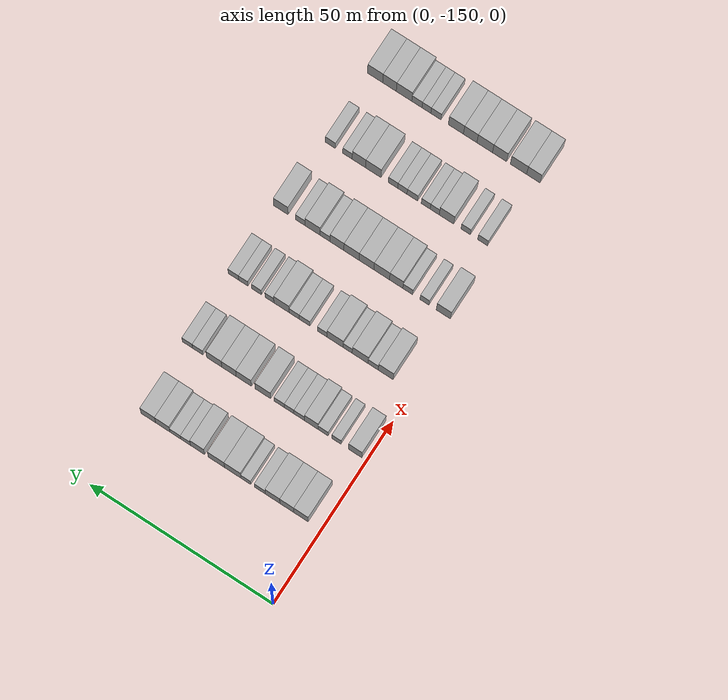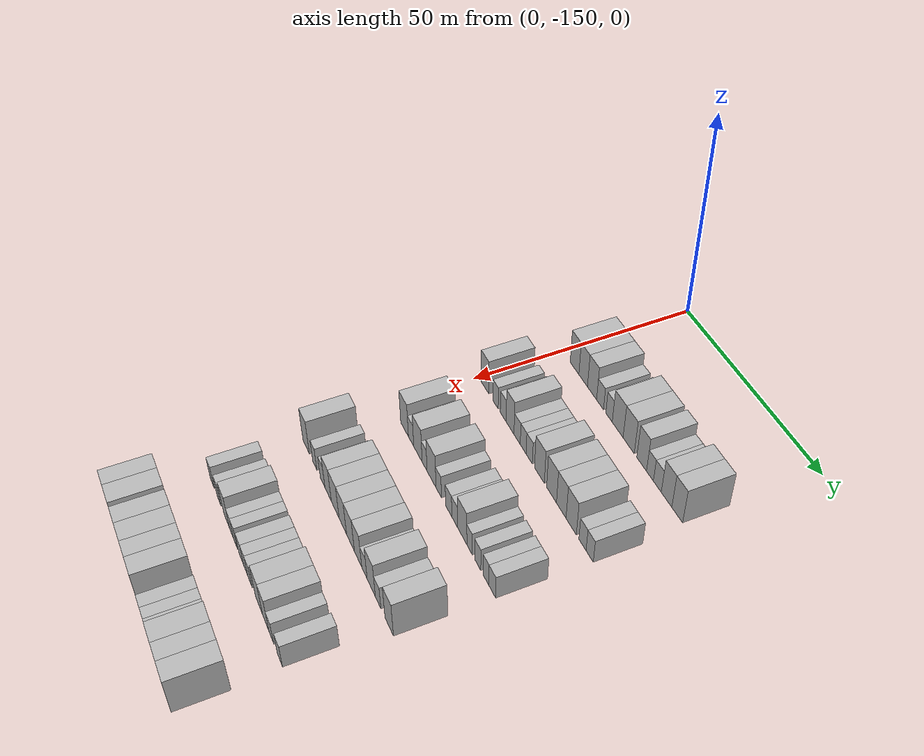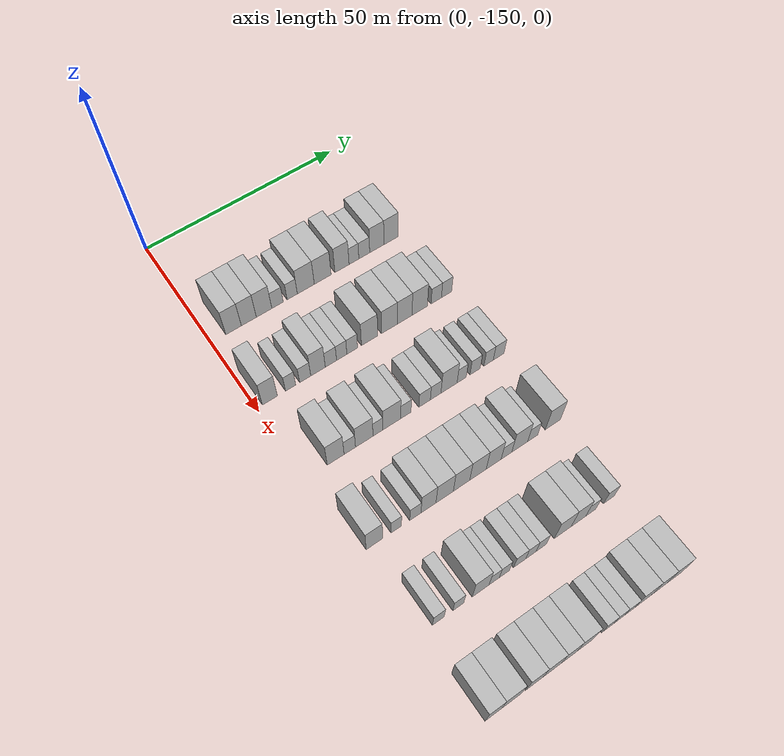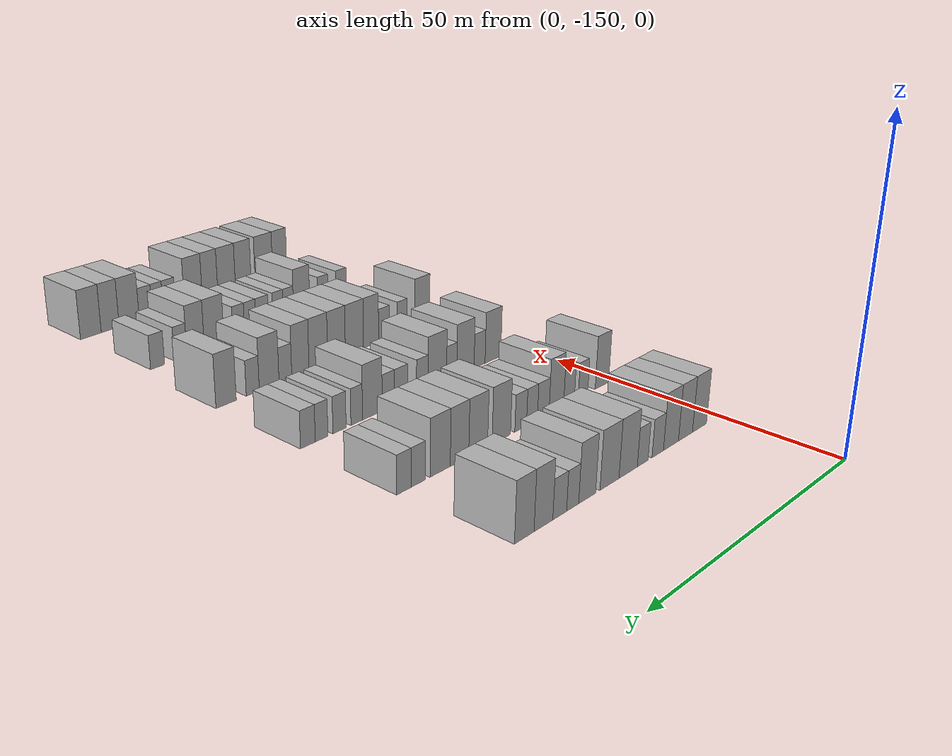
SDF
<sdf version="1.6">
 <world name="default">
  <model name="building_56">
   <static>1</static>
   <pose>25.0000 -144.4338 0 0.000000 0.000000 0.000000</pose>
   <link name="link">
    <pose>0 0 4.50 0 0 0</pose>
    <collision name="collision"><geometry><box><size>10.0000 3.9071 9.0000</size></box></geometry></collision>
    <visual name="visual">
     <cast_shadows>0</cast_shadows>
     <geometry><box><size>10.0000 3.9071 9.0000</size></box></geometry>
     <material>
      <script>
       <uri>model://HANNAS_wall/materials/scripts</uri>
       <uri>model://HANNAS_wall/materials/textures</uri>
       <name>vrc/HANNAS_wall</name>
      </script>
     </material>
    </visual>
   </link>
  </model>
  <model name="building_57">
   <static>1</static>
   <pose>25.0000 -140.5802 0 0.000000 0.000000 0.000000</pose>
   <link name="link">
    <pose>0 0 4.50 0 0 0</pose>
    <collision name="collision"><geometry><box><size>10.0000 3.8001 9.0000</size></box></geometry></collision>
    <visual name="visual">
     <cast_shadows>0</cast_shadows>
     <geometry><box><size>10.0000 3.8001 9.0000</size></box></geometry>
     <material>
      <script>
       <uri>model://HANNAS_wall/materials/scripts</uri>
       <uri>model://HANNAS_wall/materials/textures</uri>
       <name>vrc/HANNAS_wall</name>
      </script>
     </material>
    </visual>
   </link>
  </model>
  <model name="building_58">
   <static>1</static>
   <pose>25.0000 -136.6955 0 0.000000 0.000000 0.000000</pose>
   <link name="link">
    <pose>0 0 4.50 0 0 0</pose>
    <collision name="collision"><geometry><box><size>10.0000 3.9693 9.0000</size></box></geometry></collision>
    <visual name="visual">
     <cast_shadows>0</cast_shadows>
     <geometry><box><size>10.0000 3.9693 9.0000</size></box></geometry>
     <material>
      <script>
       <uri>model://HANNAS_wall/materials/scripts</uri>
       <uri>model://HANNAS_wall/materials/textures</uri>
       <name>vrc/HANNAS_wall</name>
      </script>
     </material>
    </visual>
   </link>
  </model>
  <model name="building_59">
   <static>1</static>
   <pose>25.0000 -133.2361 0 0.000000 0.000000 0.000000</pose>
   <link name="link">
    <pose>0 0 3.00 0 0 0</pose>
    <collision name="collision"><geometry><box><size>10.0000 2.9495 6.0000</size></box></geometry></collision>
    <visual name="visual">
     <cast_shadows>0</cast_shadows>
     <geometry><box><size>10.0000 2.9495 6.0000</size></box></geometry>
     <material>
      <script>
       <uri>model://HANNAS_wall/materials/scripts</uri>
       <uri>model://HANNAS_wall/materials/textures</uri>
       <name>vrc/HANNAS_wall</name>
      </script>
     </material>
    </visual>
   </link>
  </model>
  <model name="building_60">
   <static>1</static>
   <pose>25.0000 -129.4238 0 0.000000 0.000000 0.000000</pose>
   <link name="link">
    <pose>0 0 3.00 0 0 0</pose>
    <collision name="collision"><geometry><box><size>10.0000 2.6751 6.0000</size></box></geometry></collision>
    <visual name="visual">
     <cast_shadows>0</cast_shadows>
     <geometry><box><size>10.0000 2.6751 6.0000</size></box></geometry>
     <material>
      <script>
       <uri>model://HANNAS_wall/materials/scripts</uri>
       <uri>model://HANNAS_wall/materials/textures</uri>
       <name>vrc/HANNAS_wall</name>
      </script>
     </material>
    </visual>
   </link>
  </model>
  <model name="building_61">
   <static>1</static>
   <pose>25.0000 -125.8578 0 0.000000 0.000000 0.000000</pose>
   <link name="link">
    <pose>0 0 4.50 0 0 0</pose>
    <collision name="collision"><geometry><box><size>10.0000 4.4569 9.0000</size></box></geometry></collision>
    <visual name="visual">
     <cast_shadows>0</cast_shadows>
     <geometry><box><size>10.0000 4.4569 9.0000</size></box></geometry>
     <material>
      <script>
       <uri>model://HANNAS_wall/materials/scripts</uri>
       <uri>model://HANNAS_wall/materials/textures</uri>
       <name>vrc/HANNAS_wall</name>
      </script>
     </material>
    </visual>
   </link>
  </model>
  <model name="building_62">
   <static>1</static>
   <pose>25.0000 -121.3901 0 0.000000 0.000000 0.000000</pose>
   <link name="link">
    <pose>0 0 4.50 0 0 0</pose>
    <collision name="collision"><geometry><box><size>10.0000 4.4784 9.0000</size></box></geometry></collision>
    <visual name="visual">
     <cast_shadows>0</cast_shadows>
     <geometry><box><size>10.0000 4.4784 9.0000</size></box></geometry>
     <material>
      <script>
       <uri>model://HANNAS_wall/materials/scripts</uri>
       <uri>model://HANNAS_wall/materials/textures</uri>
       <name>vrc/HANNAS_wall</name>
      </script>
     </material>
    </visual>
   </link>
  </model>
  <model name="building_63">
   <static>1</static>
   <pose>25.0000 -116.2406 0 0.000000 0.000000 0.000000</pose>
   <link name="link">
    <pose>0 0 4.50 0 0 0</pose>
    <collision name="collision"><geometry><box><size>10.0000 3.8207 9.0000</size></box></geometry></collision>
    <visual name="visual">
     <cast_shadows>0</cast_shadows>
     <geometry><box><size>10.0000 3.8207 9.0000</size></box></geometry>
     <material>
      <script>
       <uri>model://HANNAS_wall/materials/scripts</uri>
       <uri>model://HANNAS_wall/materials/textures</uri>
       <name>vrc/HANNAS_wall</name>
      </script>
     </material>
    </visual>
   </link>
  </model>
  <model name="building_64">
   <static>1</static>
   <pose>25.0000 -113.0054 0 0.000000 0.000000 0.000000</pose>
   <link name="link">
    <pose>0 0 3.00 0 0 0</pose>
    <collision name="collision"><geometry><box><size>10.0000 2.6496 6.0000</size></box></geometry></collision>
    <visual name="visual">
     <cast_shadows>0</cast_shadows>
     <geometry><box><size>10.0000 2.6496 6.0000</size></box></geometry>
     <material>
      <script>
       <uri>model://HANNAS_wall/materials/scripts</uri>
       <uri>model://HANNAS_wall/materials/textures</uri>
       <name>vrc/HANNAS_wall</name>
      </script>
     </material>
    </visual>
   </link>
  </model>
  <model name="building_65">
   <static>1</static>
   <pose>25.0000 -110.1968 0 0.000000 0.000000 0.000000</pose>
   <link name="link">
    <pose>0 0 3.00 0 0 0</pose>
    <collision name="collision"><geometry><box><size>10.0000 2.9675 6.0000</size></box></geometry></collision>
    <visual name="visual">
     <cast_shadows>0</cast_shadows>
     <geometry><box><size>10.0000 2.9675 6.0000</size></box></geometry>
     <material>
      <script>
       <uri>model://HANNAS_wall/materials/scripts</uri>
       <uri>model://HANNAS_wall/materials/textures</uri>
       <name>vrc/HANNAS_wall</name>
      </script>
     </material>
    </visual>
   </link>
  </model>
  <model name="building_66">
   <static>1</static>
   <pose>25.0000 -106.7557 0 0.000000 0.000000 0.000000</pose>
   <link name="link">
    <pose>0 0 4.50 0 0 0</pose>
    <collision name="collision"><geometry><box><size>10.0000 3.9147 9.0000</size></box></geometry></collision>
    <visual name="visual">
     <cast_shadows>0</cast_shadows>
     <geometry><box><size>10.0000 3.9147 9.0000</size></box></geometry>
     <material>
      <script>
       <uri>model://HANNAS_wall/materials/scripts</uri>
       <uri>model://HANNAS_wall/materials/textures</uri>
       <name>vrc/HANNAS_wall</name>
      </script>
     </material>
    </visual>
   </link>
  </model>
  <model name="building_67">
   <static>1</static>
   <pose>25.0000 -102.8160 0 0.000000 0.000000 0.000000</pose>
   <link name="link">
    <pose>0 0 4.50 0 0 0</pose>
    <collision name="collision"><geometry><box><size>10.0000 3.9646 9.0000</size></box></geometry></collision>
    <visual name="visual">
     <cast_shadows>0</cast_shadows>
     <geometry><box><size>10.0000 3.9646 9.0000</size></box></geometry>
     <material>
      <script>
       <uri>model://HANNAS_wall/materials/scripts</uri>
       <uri>model://HANNAS_wall/materials/textures</uri>
       <name>vrc/HANNAS_wall</name>
      </script>
     </material>
    </visual>
   </link>
  </model>
  <model name="building_232">
   <static>1</static>
   <pose>44.0000 -146.7465 0 0.000000 0.000000 0.000000</pose>
   <link name="link">
    <pose>0 0 4.50 0 0 0</pose>
    <collision name="collision"><geometry><box><size>10.0000 3.6702 9.0000</size></box></geometry></collision>
    <visual name="visual">
     <cast_shadows>0</cast_shadows>
     <geometry><box><size>10.0000 3.6702 9.0000</size></box></geometry>
     <material>
      <script>
       <uri>model://HANNAS_wall/materials/scripts</uri>
       <uri>model://HANNAS_wall/materials/textures</uri>
       <name>vrc/HANNAS_wall</name>
      </script>
     </material>
    </visual>
   </link>
  </model>
  <model name="building_233">
   <static>1</static>
   <pose>44.0000 -141.6533 0 0.000000 0.000000 0.000000</pose>
   <link name="link">
    <pose>0 0 3.00 0 0 0</pose>
    <collision name="collision"><geometry><box><size>10.0000 2.5163 6.0000</size></box></geometry></collision>
    <visual name="visual">
     <cast_shadows>0</cast_shadows>
     <geometry><box><size>10.0000 2.5163 6.0000</size></box></geometry>
     <material>
      <script>
       <uri>model://HANNAS_wall/materials/scripts</uri>
       <uri>model://HANNAS_wall/materials/textures</uri>
       <name>vrc/HANNAS_wall</name>
      </script>
     </material>
    </visual>
   </link>
  </model>
  <model name="building_234">
   <static>1</static>
   <pose>44.0000 -138.0131 0 0.000000 0.000000 0.000000</pose>
   <link name="link">
    <pose>0 0 3.00 0 0 0</pose>
    <collision name="collision"><geometry><box><size>10.0000 2.7643 6.0000</size></box></geometry></collision>
    <visual name="visual">
     <cast_shadows>0</cast_shadows>
     <geometry><box><size>10.0000 2.7643 6.0000</size></box></geometry>
     <material>
      <script>
       <uri>model://HANNAS_wall/materials/scripts</uri>
       <uri>model://HANNAS_wall/materials/textures</uri>
       <name>vrc/HANNAS_wall</name>
      </script>
     </material>
    </visual>
   </link>
  </model>
  <model name="building_235">
   <static>1</static>
   <pose>44.0000 -134.7949 0 0.000000 0.000000 0.000000</pose>
   <link name="link">
    <pose>0 0 4.50 0 0 0</pose>
    <collision name="collision"><geometry><box><size>10.0000 3.6720 9.0000</size></box></geometry></collision>
    <visual name="visual">
     <cast_shadows>0</cast_shadows>
     <geometry><box><size>10.0000 3.6720 9.0000</size></box></geometry>
     <material>
      <script>
       <uri>model://HANNAS_wall/materials/scripts</uri>
       <uri>model://HANNAS_wall/materials/textures</uri>
       <name>vrc/HANNAS_wall</name>
      </script>
     </material>
    </visual>
   </link>
  </model>
  <model name="building_236">
   <static>1</static>
   <pose>44.0000 -131.5274 0 0.000000 0.000000 0.000000</pose>
   <link name="link">
    <pose>0 0 3.00 0 0 0</pose>
    <collision name="collision"><geometry><box><size>10.0000 2.8631 6.0000</size></box></geometry></collision>
    <visual name="visual">
     <cast_shadows>0</cast_shadows>
     <geometry><box><size>10.0000 2.8631 6.0000</size></box></geometry>
     <material>
      <script>
       <uri>model://HANNAS_wall/materials/scripts</uri>
       <uri>model://HANNAS_wall/materials/textures</uri>
       <name>vrc/HANNAS_wall</name>
      </script>
     </material>
    </visual>
   </link>
  </model>
  <model name="building_237">
   <static>1</static>
   <pose>44.0000 -128.7807 0 0.000000 0.000000 0.000000</pose>
   <link name="link">
    <pose>0 0 3.00 0 0 0</pose>
    <collision name="collision"><geometry><box><size>10.0000 2.6303 6.0000</size></box></geometry></collision>
    <visual name="visual">
     <cast_shadows>0</cast_shadows>
     <geometry><box><size>10.0000 2.6303 6.0000</size></box></geometry>
     <material>
      <script>
       <uri>model://HANNAS_wall/materials/scripts</uri>
       <uri>model://HANNAS_wall/materials/textures</uri>
       <name>vrc/HANNAS_wall</name>
      </script>
     </material>
    </visual>
   </link>
  </model>
  <model name="building_238">
   <static>1</static>
   <pose>44.0000 -126.0869 0 0.000000 0.000000 0.000000</pose>
   <link name="link">
    <pose>0 0 3.00 0 0 0</pose>
    <collision name="collision"><geometry><box><size>10.0000 2.7572 6.0000</size></box></geometry></collision>
    <visual name="visual">
     <cast_shadows>0</cast_shadows>
     <geometry><box><size>10.0000 2.7572 6.0000</size></box></geometry>
     <material>
      <script>
       <uri>model://HANNAS_wall/materials/scripts</uri>
       <uri>model://HANNAS_wall/materials/textures</uri>
       <name>vrc/HANNAS_wall</name>
      </script>
     </material>
    </visual>
   </link>
  </model>
  <model name="building_239">
   <static>1</static>
   <pose>44.0000 -121.5928 0 0.000000 0.000000 0.000000</pose>
   <link name="link">
    <pose>0 0 4.50 0 0 0</pose>
    <collision name="collision"><geometry><box><size>10.0000 4.2310 9.0000</size></box></geometry></collision>
    <visual name="visual">
     <cast_shadows>0</cast_shadows>
     <geometry><box><size>10.0000 4.2310 9.0000</size></box></geometry>
     <material>
      <script>
       <uri>model://HANNAS_wall/materials/scripts</uri>
       <uri>model://HANNAS_wall/materials/textures</uri>
       <name>vrc/HANNAS_wall</name>
      </script>
     </material>
    </visual>
   </link>
  </model>
  <model name="building_240">
   <static>1</static>
   <pose>44.0000 -116.3970 0 0.000000 0.000000 0.000000</pose>
   <link name="link">
    <pose>0 0 4.50 0 0 0</pose>
    <collision name="collision"><geometry><box><size>10.0000 4.1607 9.0000</size></box></geometry></collision>
    <visual name="visual">
     <cast_shadows>0</cast_shadows>
     <geometry><box><size>10.0000 4.1607 9.0000</size></box></geometry>
     <material>
      <script>
       <uri>model://HANNAS_wall/materials/scripts</uri>
       <uri>model://HANNAS_wall/materials/textures</uri>
       <name>vrc/HANNAS_wall</name>
      </script>
     </material>
    </visual>
   </link>
  </model>
  <model name="building_241">
   <static>1</static>
   <pose>44.0000 -112.3488 0 0.000000 0.000000 0.000000</pose>
   <link name="link">
    <pose>0 0 4.50 0 0 0</pose>
    <collision name="collision"><geometry><box><size>10.0000 3.9356 9.0000</size></box></geometry></collision>
    <visual name="visual">
     <cast_shadows>0</cast_shadows>
     <geometry><box><size>10.0000 3.9356 9.0000</size></box></geometry>
     <material>
      <script>
       <uri>model://HANNAS_wall/materials/scripts</uri>
       <uri>model://HANNAS_wall/materials/textures</uri>
       <name>vrc/HANNAS_wall</name>
      </script>
     </material>
    </visual>
   </link>
  </model>
  <model name="building_242">
   <static>1</static>
   <pose>44.0000 -108.2969 0 0.000000 0.000000 0.000000</pose>
   <link name="link">
    <pose>0 0 4.50 0 0 0</pose>
    <collision name="collision"><geometry><box><size>10.0000 4.1682 9.0000</size></box></geometry></collision>
    <visual name="visual">
     <cast_shadows>0</cast_shadows>
     <geometry><box><size>10.0000 4.1682 9.0000</size></box></geometry>
     <material>
      <script>
       <uri>model://HANNAS_wall/materials/scripts</uri>
       <uri>model://HANNAS_wall/materials/textures</uri>
       <name>vrc/HANNAS_wall</name>
      </script>
     </material>
    </visual>
   </link>
  </model>
  <model name="building_243">
   <static>1</static>
   <pose>44.0000 -103.7944 0 0.000000 0.000000 0.000000</pose>
   <link name="link">
    <pose>0 0 3.00 0 0 0</pose>
    <collision name="collision"><geometry><box><size>10.0000 2.8368 6.0000</size></box></geometry></collision>
    <visual name="visual">
     <cast_shadows>0</cast_shadows>
     <geometry><box><size>10.0000 2.8368 6.0000</size></box></geometry>
     <material>
      <script>
       <uri>model://HANNAS_wall/materials/scripts</uri>
       <uri>model://HANNAS_wall/materials/textures</uri>
       <name>vrc/HANNAS_wall</name>
      </script>
     </material>
    </visual>
   </link>
  </model>
  <model name="building_244">
   <static>1</static>
   <pose>44.0000 -100.9791 0 0.000000 0.000000 0.000000</pose>
   <link name="link">
    <pose>0 0 3.00 0 0 0</pose>
    <collision name="collision"><geometry><box><size>10.0000 2.7939 6.0000</size></box></geometry></collision>
    <visual name="visual">
     <cast_shadows>0</cast_shadows>
     <geometry><box><size>10.0000 2.7939 6.0000</size></box></geometry>
     <material>
      <script>
       <uri>model://HANNAS_wall/materials/scripts</uri>
       <uri>model://HANNAS_wall/materials/textures</uri>
       <name>vrc/HANNAS_wall</name>
      </script>
     </material>
    </visual>
   </link>
  </model>
  <model name="building_401">
   <static>1</static>
   <pose>63.0000 -142.7345 0 0.000000 0.000000 0.000000</pose>
   <link name="link">
    <pose>0 0 4.50 0 0 0</pose>
    <collision name="collision"><geometry><box><size>10.0000 4.0829 9.0000</size></box></geometry></collision>
    <visual name="visual">
     <cast_shadows>0</cast_shadows>
     <geometry><box><size>10.0000 4.0829 9.0000</size></box></geometry>
     <material>
      <script>
       <uri>model://HANNAS_wall/materials/scripts</uri>
       <uri>model://HANNAS_wall/materials/textures</uri>
       <name>vrc/HANNAS_wall</name>
      </script>
     </material>
    </visual>
   </link>
  </model>
  <model name="building_402">
   <static>1</static>
   <pose>63.0000 -139.2998 0 0.000000 0.000000 0.000000</pose>
   <link name="link">
    <pose>0 0 3.00 0 0 0</pose>
    <collision name="collision"><geometry><box><size>10.0000 2.7864 6.0000</size></box></geometry></collision>
    <visual name="visual">
     <cast_shadows>0</cast_shadows>
     <geometry><box><size>10.0000 2.7864 6.0000</size></box></geometry>
     <material>
      <script>
       <uri>model://HANNAS_wall/materials/scripts</uri>
       <uri>model://HANNAS_wall/materials/textures</uri>
       <name>vrc/HANNAS_wall</name>
      </script>
     </material>
    </visual>
   </link>
  </model>
  <model name="building_403">
   <static>1</static>
   <pose>63.0000 -135.7537 0 0.000000 0.000000 0.000000</pose>
   <link name="link">
    <pose>0 0 4.50 0 0 0</pose>
    <collision name="collision"><geometry><box><size>10.0000 4.3058 9.0000</size></box></geometry></collision>
    <visual name="visual">
     <cast_shadows>0</cast_shadows>
     <geometry><box><size>10.0000 4.3058 9.0000</size></box></geometry>
     <material>
      <script>
       <uri>model://HANNAS_wall/materials/scripts</uri>
       <uri>model://HANNAS_wall/materials/textures</uri>
       <name>vrc/HANNAS_wall</name>
      </script>
     </material>
    </visual>
   </link>
  </model>
  <model name="building_404">
   <static>1</static>
   <pose>63.0000 -132.3612 0 0.000000 0.000000 0.000000</pose>
   <link name="link">
    <pose>0 0 3.00 0 0 0</pose>
    <collision name="collision"><geometry><box><size>10.0000 2.4791 6.0000</size></box></geometry></collision>
    <visual name="visual">
     <cast_shadows>0</cast_shadows>
     <geometry><box><size>10.0000 2.4791 6.0000</size></box></geometry>
     <material>
      <script>
       <uri>model://HANNAS_wall/materials/scripts</uri>
       <uri>model://HANNAS_wall/materials/textures</uri>
       <name>vrc/HANNAS_wall</name>
      </script>
     </material>
    </visual>
   </link>
  </model>
  <model name="building_405">
   <static>1</static>
   <pose>63.0000 -128.9034 0 0.000000 0.000000 0.000000</pose>
   <link name="link">
    <pose>0 0 4.50 0 0 0</pose>
    <collision name="collision"><geometry><box><size>10.0000 4.4365 9.0000</size></box></geometry></collision>
    <visual name="visual">
     <cast_shadows>0</cast_shadows>
     <geometry><box><size>10.0000 4.4365 9.0000</size></box></geometry>
     <material>
      <script>
       <uri>model://HANNAS_wall/materials/scripts</uri>
       <uri>model://HANNAS_wall/materials/textures</uri>
       <name>vrc/HANNAS_wall</name>
      </script>
     </material>
    </visual>
   </link>
  </model>
  <model name="building_406">
   <static>1</static>
   <pose>63.0000 -125.3694 0 0.000000 0.000000 0.000000</pose>
   <link name="link">
    <pose>0 0 3.00 0 0 0</pose>
    <collision name="collision"><geometry><box><size>10.0000 2.6315 6.0000</size></box></geometry></collision>
    <visual name="visual">
     <cast_shadows>0</cast_shadows>
     <geometry><box><size>10.0000 2.6315 6.0000</size></box></geometry>
     <material>
      <script>
       <uri>model://HANNAS_wall/materials/scripts</uri>
       <uri>model://HANNAS_wall/materials/textures</uri>
       <name>vrc/HANNAS_wall</name>
      </script>
     </material>
    </visual>
   </link>
  </model>
  <model name="building_407">
   <static>1</static>
   <pose>63.0000 -120.5823 0 0.000000 0.000000 0.000000</pose>
   <link name="link">
    <pose>0 0 3.00 0 0 0</pose>
    <collision name="collision"><geometry><box><size>10.0000 2.9426 6.0000</size></box></geometry></collision>
    <visual name="visual">
     <cast_shadows>0</cast_shadows>
     <geometry><box><size>10.0000 2.9426 6.0000</size></box></geometry>
     <material>
      <script>
       <uri>model://HANNAS_wall/materials/scripts</uri>
       <uri>model://HANNAS_wall/materials/textures</uri>
       <name>vrc/HANNAS_wall</name>
      </script>
     </material>
    </visual>
   </link>
  </model>
  <model name="building_408">
   <static>1</static>
   <pose>63.0000 -117.7461 0 0.000000 0.000000 0.000000</pose>
   <link name="link">
    <pose>0 0 3.00 0 0 0</pose>
    <collision name="collision"><geometry><box><size>10.0000 2.7299 6.0000</size></box></geometry></collision>
    <visual name="visual">
     <cast_shadows>0</cast_shadows>
     <geometry><box><size>10.0000 2.7299 6.0000</size></box></geometry>
     <material>
      <script>
       <uri>model://HANNAS_wall/materials/scripts</uri>
       <uri>model://HANNAS_wall/materials/textures</uri>
       <name>vrc/HANNAS_wall</name>
      </script>
     </material>
    </visual>
   </link>
  </model>
  <model name="building_409">
   <static>1</static>
   <pose>63.0000 -114.2747 0 0.000000 0.000000 0.000000</pose>
   <link name="link">
    <pose>0 0 4.50 0 0 0</pose>
    <collision name="collision"><geometry><box><size>10.0000 4.2128 9.0000</size></box></geometry></collision>
    <visual name="visual">
     <cast_shadows>0</cast_shadows>
     <geometry><box><size>10.0000 4.2128 9.0000</size></box></geometry>
     <material>
      <script>
       <uri>model://HANNAS_wall/materials/scripts</uri>
       <uri>model://HANNAS_wall/materials/textures</uri>
       <name>vrc/HANNAS_wall</name>
      </script>
     </material>
    </visual>
   </link>
  </model>
  <model name="building_410">
   <static>1</static>
   <pose>63.0000 -110.9553 0 0.000000 0.000000 0.000000</pose>
   <link name="link">
    <pose>0 0 3.00 0 0 0</pose>
    <collision name="collision"><geometry><box><size>10.0000 2.4262 6.0000</size></box></geometry></collision>
    <visual name="visual">
     <cast_shadows>0</cast_shadows>
     <geometry><box><size>10.0000 2.4262 6.0000</size></box></geometry>
     <material>
      <script>
       <uri>model://HANNAS_wall/materials/scripts</uri>
       <uri>model://HANNAS_wall/materials/textures</uri>
       <name>vrc/HANNAS_wall</name>
      </script>
     </material>
    </visual>
   </link>
  </model>
  <model name="building_411">
   <static>1</static>
   <pose>63.0000 -107.3927 0 0.000000 0.000000 0.000000</pose>
   <link name="link">
    <pose>0 0 3.00 0 0 0</pose>
    <collision name="collision"><geometry><box><size>10.0000 2.6989 6.0000</size></box></geometry></collision>
    <visual name="visual">
     <cast_shadows>0</cast_shadows>
     <geometry><box><size>10.0000 2.6989 6.0000</size></box></geometry>
     <material>
      <script>
       <uri>model://HANNAS_wall/materials/scripts</uri>
       <uri>model://HANNAS_wall/materials/textures</uri>
       <name>vrc/HANNAS_wall</name>
      </script>
     </material>
    </visual>
   </link>
  </model>
  <model name="building_412">
   <static>1</static>
   <pose>63.0000 -103.7847 0 0.000000 0.000000 0.000000</pose>
   <link name="link">
    <pose>0 0 3.00 0 0 0</pose>
    <collision name="collision"><geometry><box><size>10.0000 2.5171 6.0000</size></box></geometry></collision>
    <visual name="visual">
     <cast_shadows>0</cast_shadows>
     <geometry><box><size>10.0000 2.5171 6.0000</size></box></geometry>
     <material>
      <script>
       <uri>model://HANNAS_wall/materials/scripts</uri>
       <uri>model://HANNAS_wall/materials/textures</uri>
       <name>vrc/HANNAS_wall</name>
      </script>
     </material>
    </visual>
   </link>
  </model>
  <model name="building_413">
   <static>1</static>
   <pose>63.0000 -101.0803 0 0.000000 0.000000 0.000000</pose>
   <link name="link">
    <pose>0 0 3.00 0 0 0</pose>
    <collision name="collision"><geometry><box><size>10.0000 2.8915 6.0000</size></box></geometry></collision>
    <visual name="visual">
     <cast_shadows>0</cast_shadows>
     <geometry><box><size>10.0000 2.8915 6.0000</size></box></geometry>
     <material>
      <script>
       <uri>model://HANNAS_wall/materials/scripts</uri>
       <uri>model://HANNAS_wall/materials/textures</uri>
       <name>vrc/HANNAS_wall</name>
      </script>
     </material>
    </visual>
   </link>
  </model>
  <model name="building_559">
   <static>1</static>
   <pose>82.0000 -146.1750 0 0.000000 0.000000 0.000000</pose>
   <link name="link">
    <pose>0 0 4.50 0 0 0</pose>
    <collision name="collision"><geometry><box><size>10.0000 3.8671 9.0000</size></box></geometry></collision>
    <visual name="visual">
     <cast_shadows>0</cast_shadows>
     <geometry><box><size>10.0000 3.8671 9.0000</size></box></geometry>
     <material>
      <script>
       <uri>model://HANNAS_wall/materials/scripts</uri>
       <uri>model://HANNAS_wall/materials/textures</uri>
       <name>vrc/HANNAS_wall</name>
      </script>
     </material>
    </visual>
   </link>
  </model>
  <model name="building_560">
   <static>1</static>
   <pose>82.0000 -141.0146 0 0.000000 0.000000 0.000000</pose>
   <link name="link">
    <pose>0 0 3.00 0 0 0</pose>
    <collision name="collision"><geometry><box><size>10.0000 2.4539 6.0000</size></box></geometry></collision>
    <visual name="visual">
     <cast_shadows>0</cast_shadows>
     <geometry><box><size>10.0000 2.4539 6.0000</size></box></geometry>
     <material>
      <script>
       <uri>model://HANNAS_wall/materials/scripts</uri>
       <uri>model://HANNAS_wall/materials/textures</uri>
       <name>vrc/HANNAS_wall</name>
      </script>
     </material>
    </visual>
   </link>
  </model>
  <model name="building_561">
   <static>1</static>
   <pose>82.0000 -136.4473 0 0.000000 0.000000 0.000000</pose>
   <link name="link">
    <pose>0 0 3.00 0 0 0</pose>
    <collision name="collision"><geometry><box><size>10.0000 2.6807 6.0000</size></box></geometry></collision>
    <visual name="visual">
     <cast_shadows>0</cast_shadows>
     <geometry><box><size>10.0000 2.6807 6.0000</size></box></geometry>
     <material>
      <script>
       <uri>model://HANNAS_wall/materials/scripts</uri>
       <uri>model://HANNAS_wall/materials/textures</uri>
       <name>vrc/HANNAS_wall</name>
      </script>
     </material>
    </visual>
   </link>
  </model>
  <model name="building_562">
   <static>1</static>
   <pose>82.0000 -133.2791 0 0.000000 0.000000 0.000000</pose>
   <link name="link">
    <pose>0 0 4.50 0 0 0</pose>
    <collision name="collision"><geometry><box><size>10.0000 3.6556 9.0000</size></box></geometry></collision>
    <visual name="visual">
     <cast_shadows>0</cast_shadows>
     <geometry><box><size>10.0000 3.6556 9.0000</size></box></geometry>
     <material>
      <script>
       <uri>model://HANNAS_wall/materials/scripts</uri>
       <uri>model://HANNAS_wall/materials/textures</uri>
       <name>vrc/HANNAS_wall</name>
      </script>
     </material>
    </visual>
   </link>
  </model>
  <model name="building_563">
   <static>1</static>
   <pose>82.0000 -129.3156 0 0.000000 0.000000 0.000000</pose>
   <link name="link">
    <pose>0 0 4.50 0 0 0</pose>
    <collision name="collision"><geometry><box><size>10.0000 4.2714 9.0000</size></box></geometry></collision>
    <visual name="visual">
     <cast_shadows>0</cast_shadows>
     <geometry><box><size>10.0000 4.2714 9.0000</size></box></geometry>
     <material>
      <script>
       <uri>model://HANNAS_wall/materials/scripts</uri>
       <uri>model://HANNAS_wall/materials/textures</uri>
       <name>vrc/HANNAS_wall</name>
      </script>
     </material>
    </visual>
   </link>
  </model>
  <model name="building_564">
   <static>1</static>
   <pose>82.0000 -125.1461 0 0.000000 0.000000 0.000000</pose>
   <link name="link">
    <pose>0 0 4.50 0 0 0</pose>
    <collision name="collision"><geometry><box><size>10.0000 4.0678 9.0000</size></box></geometry></collision>
    <visual name="visual">
     <cast_shadows>0</cast_shadows>
     <geometry><box><size>10.0000 4.0678 9.0000</size></box></geometry>
     <material>
      <script>
       <uri>model://HANNAS_wall/materials/scripts</uri>
       <uri>model://HANNAS_wall/materials/textures</uri>
       <name>vrc/HANNAS_wall</name>
      </script>
     </material>
    </visual>
   </link>
  </model>
  <model name="building_565">
   <static>1</static>
   <pose>82.0000 -121.0267 0 0.000000 0.000000 0.000000</pose>
   <link name="link">
    <pose>0 0 4.50 0 0 0</pose>
    <collision name="collision"><geometry><box><size>10.0000 4.1711 9.0000</size></box></geometry></collision>
    <visual name="visual">
     <cast_shadows>0</cast_shadows>
     <geometry><box><size>10.0000 4.1711 9.0000</size></box></geometry>
     <material>
      <script>
       <uri>model://HANNAS_wall/materials/scripts</uri>
       <uri>model://HANNAS_wall/materials/textures</uri>
       <name>vrc/HANNAS_wall</name>
      </script>
     </material>
    </visual>
   </link>
  </model>
  <model name="building_566">
   <static>1</static>
   <pose>82.0000 -117.0507 0 0.000000 0.000000 0.000000</pose>
   <link name="link">
    <pose>0 0 4.50 0 0 0</pose>
    <collision name="collision"><geometry><box><size>10.0000 3.7808 9.0000</size></box></geometry></collision>
    <visual name="visual">
     <cast_shadows>0</cast_shadows>
     <geometry><box><size>10.0000 3.7808 9.0000</size></box></geometry>
     <material>
      <script>
       <uri>model://HANNAS_wall/materials/scripts</uri>
       <uri>model://HANNAS_wall/materials/textures</uri>
       <name>vrc/HANNAS_wall</name>
      </script>
     </material>
    </visual>
   </link>
  </model>
  <model name="building_567">
   <static>1</static>
   <pose>82.0000 -113.7936 0 0.000000 0.000000 0.000000</pose>
   <link name="link">
    <pose>0 0 3.00 0 0 0</pose>
    <collision name="collision"><geometry><box><size>10.0000 2.7335 6.0000</size></box></geometry></collision>
    <visual name="visual">
     <cast_shadows>0</cast_shadows>
     <geometry><box><size>10.0000 2.7335 6.0000</size></box></geometry>
     <material>
      <script>
       <uri>model://HANNAS_wall/materials/scripts</uri>
       <uri>model://HANNAS_wall/materials/textures</uri>
       <name>vrc/HANNAS_wall</name>
      </script>
     </material>
    </visual>
   </link>
  </model>
  <model name="building_568">
   <static>1</static>
   <pose>82.0000 -110.3679 0 0.000000 0.000000 0.000000</pose>
   <link name="link">
    <pose>0 0 4.50 0 0 0</pose>
    <collision name="collision"><geometry><box><size>10.0000 4.1178 9.0000</size></box></geometry></collision>
    <visual name="visual">
     <cast_shadows>0</cast_shadows>
     <geometry><box><size>10.0000 4.1178 9.0000</size></box></geometry>
     <material>
      <script>
       <uri>model://HANNAS_wall/materials/scripts</uri>
       <uri>model://HANNAS_wall/materials/textures</uri>
       <name>vrc/HANNAS_wall</name>
      </script>
     </material>
    </visual>
   </link>
  </model>
  <model name="building_569">
   <static>1</static>
   <pose>82.0000 -106.9767 0 0.000000 0.000000 0.000000</pose>
   <link name="link">
    <pose>0 0 3.00 0 0 0</pose>
    <collision name="collision"><geometry><box><size>10.0000 2.6646 6.0000</size></box></geometry></collision>
    <visual name="visual">
     <cast_shadows>0</cast_shadows>
     <geometry><box><size>10.0000 2.6646 6.0000</size></box></geometry>
     <material>
      <script>
       <uri>model://HANNAS_wall/materials/scripts</uri>
       <uri>model://HANNAS_wall/materials/textures</uri>
       <name>vrc/HANNAS_wall</name>
      </script>
     </material>
    </visual>
   </link>
  </model>
  <model name="building_570">
   <static>1</static>
   <pose>82.0000 -101.6415 0 0.000000 0.000000 0.000000</pose>
   <link name="link">
    <pose>0 0 4.50 0 0 0</pose>
    <collision name="collision"><geometry><box><size>10.0000 4.0058 9.0000</size></box></geometry></collision>
    <visual name="visual">
     <cast_shadows>0</cast_shadows>
     <geometry><box><size>10.0000 4.0058 9.0000</size></box></geometry>
     <material>
      <script>
       <uri>model://HANNAS_wall/materials/scripts</uri>
       <uri>model://HANNAS_wall/materials/textures</uri>
       <name>vrc/HANNAS_wall</name>
      </script>
     </material>
    </visual>
   </link>
  </model>
  <model name="building_734">
   <static>1</static>
   <pose>101.0000 -144.6673 0 0.000000 0.000000 0.000000</pose>
   <link name="link">
    <pose>0 0 3.00 0 0 0</pose>
    <collision name="collision"><geometry><box><size>10.0000 2.7108 6.0000</size></box></geometry></collision>
    <visual name="visual">
     <cast_shadows>0</cast_shadows>
     <geometry><box><size>10.0000 2.7108 6.0000</size></box></geometry>
     <material>
      <script>
       <uri>model://HANNAS_wall/materials/scripts</uri>
       <uri>model://HANNAS_wall/materials/textures</uri>
       <name>vrc/HANNAS_wall</name>
      </script>
     </material>
    </visual>
   </link>
  </model>
  <model name="building_735">
   <static>1</static>
   <pose>101.0000 -140.0364 0 0.000000 0.000000 0.000000</pose>
   <link name="link">
    <pose>0 0 3.00 0 0 0</pose>
    <collision name="collision"><geometry><box><size>10.0000 2.5512 6.0000</size></box></geometry></collision>
    <visual name="visual">
     <cast_shadows>0</cast_shadows>
     <geometry><box><size>10.0000 2.5512 6.0000</size></box></geometry>
     <material>
      <script>
       <uri>model://HANNAS_wall/materials/scripts</uri>
       <uri>model://HANNAS_wall/materials/textures</uri>
       <name>vrc/HANNAS_wall</name>
      </script>
     </material>
    </visual>
   </link>
  </model>
  <model name="building_736">
   <static>1</static>
   <pose>101.0000 -134.7794 0 0.000000 0.000000 0.000000</pose>
   <link name="link">
    <pose>0 0 4.50 0 0 0</pose>
    <collision name="collision"><geometry><box><size>10.0000 3.9628 9.0000</size></box></geometry></collision>
    <visual name="visual">
     <cast_shadows>0</cast_shadows>
     <geometry><box><size>10.0000 3.9628 9.0000</size></box></geometry>
     <material>
      <script>
       <uri>model://HANNAS_wall/materials/scripts</uri>
       <uri>model://HANNAS_wall/materials/textures</uri>
       <name>vrc/HANNAS_wall</name>
      </script>
     </material>
    </visual>
   </link>
  </model>
  <model name="building_737">
   <static>1</static>
   <pose>101.0000 -131.5636 0 0.000000 0.000000 0.000000</pose>
   <link name="link">
    <pose>0 0 3.00 0 0 0</pose>
    <collision name="collision"><geometry><box><size>10.0000 2.4688 6.0000</size></box></geometry></collision>
    <visual name="visual">
     <cast_shadows>0</cast_shadows>
     <geometry><box><size>10.0000 2.4688 6.0000</size></box></geometry>
     <material>
      <script>
       <uri>model://HANNAS_wall/materials/scripts</uri>
       <uri>model://HANNAS_wall/materials/textures</uri>
       <name>vrc/HANNAS_wall</name>
      </script>
     </material>
    </visual>
   </link>
  </model>
  <model name="building_738">
   <static>1</static>
   <pose>101.0000 -129.0946 0 0.000000 0.000000 0.000000</pose>
   <link name="link">
    <pose>0 0 3.00 0 0 0</pose>
    <collision name="collision"><geometry><box><size>10.0000 2.4692 6.0000</size></box></geometry></collision>
    <visual name="visual">
     <cast_shadows>0</cast_shadows>
     <geometry><box><size>10.0000 2.4692 6.0000</size></box></geometry>
     <material>
      <script>
       <uri>model://HANNAS_wall/materials/scripts</uri>
       <uri>model://HANNAS_wall/materials/textures</uri>
       <name>vrc/HANNAS_wall</name>
      </script>
     </material>
    </visual>
   </link>
  </model>
  <model name="building_739">
   <static>1</static>
   <pose>101.0000 -125.4010 0 0.000000 0.000000 0.000000</pose>
   <link name="link">
    <pose>0 0 3.00 0 0 0</pose>
    <collision name="collision"><geometry><box><size>10.0000 2.9181 6.0000</size></box></geometry></collision>
    <visual name="visual">
     <cast_shadows>0</cast_shadows>
     <geometry><box><size>10.0000 2.9181 6.0000</size></box></geometry>
     <material>
      <script>
       <uri>model://HANNAS_wall/materials/scripts</uri>
       <uri>model://HANNAS_wall/materials/textures</uri>
       <name>vrc/HANNAS_wall</name>
      </script>
     </material>
    </visual>
   </link>
  </model>
  <model name="building_740">
   <static>1</static>
   <pose>101.0000 -122.6664 0 0.000000 0.000000 0.000000</pose>
   <link name="link">
    <pose>0 0 3.00 0 0 0</pose>
    <collision name="collision"><geometry><box><size>10.0000 2.5511 6.0000</size></box></geometry></collision>
    <visual name="visual">
     <cast_shadows>0</cast_shadows>
     <geometry><box><size>10.0000 2.5511 6.0000</size></box></geometry>
     <material>
      <script>
       <uri>model://HANNAS_wall/materials/scripts</uri>
       <uri>model://HANNAS_wall/materials/textures</uri>
       <name>vrc/HANNAS_wall</name>
      </script>
     </material>
    </visual>
   </link>
  </model>
  <model name="building_741">
   <static>1</static>
   <pose>101.0000 -120.0970 0 0.000000 0.000000 0.000000</pose>
   <link name="link">
    <pose>0 0 3.00 0 0 0</pose>
    <collision name="collision"><geometry><box><size>10.0000 2.5877 6.0000</size></box></geometry></collision>
    <visual name="visual">
     <cast_shadows>0</cast_shadows>
     <geometry><box><size>10.0000 2.5877 6.0000</size></box></geometry>
     <material>
      <script>
       <uri>model://HANNAS_wall/materials/scripts</uri>
       <uri>model://HANNAS_wall/materials/textures</uri>
       <name>vrc/HANNAS_wall</name>
      </script>
     </material>
    </visual>
   </link>
  </model>
  <model name="building_742">
   <static>1</static>
   <pose>101.0000 -114.6829 0 0.000000 0.000000 0.000000</pose>
   <link name="link">
    <pose>0 0 4.50 0 0 0</pose>
    <collision name="collision"><geometry><box><size>10.0000 4.2404 9.0000</size></box></geometry></collision>
    <visual name="visual">
     <cast_shadows>0</cast_shadows>
     <geometry><box><size>10.0000 4.2404 9.0000</size></box></geometry>
     <material>
      <script>
       <uri>model://HANNAS_wall/materials/scripts</uri>
       <uri>model://HANNAS_wall/materials/textures</uri>
       <name>vrc/HANNAS_wall</name>
      </script>
     </material>
    </visual>
   </link>
  </model>
  <model name="building_743">
   <static>1</static>
   <pose>101.0000 -110.7183 0 0.000000 0.000000 0.000000</pose>
   <link name="link">
    <pose>0 0 4.50 0 0 0</pose>
    <collision name="collision"><geometry><box><size>10.0000 3.6889 9.0000</size></box></geometry></collision>
    <visual name="visual">
     <cast_shadows>0</cast_shadows>
     <geometry><box><size>10.0000 3.6889 9.0000</size></box></geometry>
     <material>
      <script>
       <uri>model://HANNAS_wall/materials/scripts</uri>
       <uri>model://HANNAS_wall/materials/textures</uri>
       <name>vrc/HANNAS_wall</name>
      </script>
     </material>
    </visual>
   </link>
  </model>
  <model name="building_744">
   <static>1</static>
   <pose>101.0000 -107.5706 0 0.000000 0.000000 0.000000</pose>
   <link name="link">
    <pose>0 0 3.00 0 0 0</pose>
    <collision name="collision"><geometry><box><size>10.0000 2.6065 6.0000</size></box></geometry></collision>
    <visual name="visual">
     <cast_shadows>0</cast_shadows>
     <geometry><box><size>10.0000 2.6065 6.0000</size></box></geometry>
     <material>
      <script>
       <uri>model://HANNAS_wall/materials/scripts</uri>
       <uri>model://HANNAS_wall/materials/textures</uri>
       <name>vrc/HANNAS_wall</name>
      </script>
     </material>
    </visual>
   </link>
  </model>
  <model name="building_745">
   <static>1</static>
   <pose>101.0000 -102.8650 0 0.000000 0.000000 0.000000</pose>
   <link name="link">
    <pose>0 0 3.00 0 0 0</pose>
    <collision name="collision"><geometry><box><size>10.0000 2.8049 6.0000</size></box></geometry></collision>
    <visual name="visual">
     <cast_shadows>0</cast_shadows>
     <geometry><box><size>10.0000 2.8049 6.0000</size></box></geometry>
     <material>
      <script>
       <uri>model://HANNAS_wall/materials/scripts</uri>
       <uri>model://HANNAS_wall/materials/textures</uri>
       <name>vrc/HANNAS_wall</name>
      </script>
     </material>
    </visual>
   </link>
  </model>
  <model name="building_911">
   <static>1</static>
   <pose>120.0000 -146.3692 0 0.000000 0.000000 0.000000</pose>
   <link name="link">
    <pose>0 0 4.50 0 0 0</pose>
    <collision name="collision"><geometry><box><size>10.0000 3.7056 9.0000</size></box></geometry></collision>
    <visual name="visual">
     <cast_shadows>0</cast_shadows>
     <geometry><box><size>10.0000 3.7056 9.0000</size></box></geometry>
     <material>
      <script>
       <uri>model://HANNAS_wall/materials/scripts</uri>
       <uri>model://HANNAS_wall/materials/textures</uri>
       <name>vrc/HANNAS_wall</name>
      </script>
     </material>
    </visual>
   </link>
  </model>
  <model name="building_912">
   <static>1</static>
   <pose>120.0000 -142.2757 0 0.000000 0.000000 0.000000</pose>
   <link name="link">
    <pose>0 0 4.50 0 0 0</pose>
    <collision name="collision"><geometry><box><size>10.0000 4.4813 9.0000</size></box></geometry></collision>
    <visual name="visual">
     <cast_shadows>0</cast_shadows>
     <geometry><box><size>10.0000 4.4813 9.0000</size></box></geometry>
     <material>
      <script>
       <uri>model://HANNAS_wall/materials/scripts</uri>
       <uri>model://HANNAS_wall/materials/textures</uri>
       <name>vrc/HANNAS_wall</name>
      </script>
     </material>
    </visual>
   </link>
  </model>
  <model name="building_913">
   <static>1</static>
   <pose>120.0000 -137.0932 0 0.000000 0.000000 0.000000</pose>
   <link name="link">
    <pose>0 0 4.50 0 0 0</pose>
    <collision name="collision"><geometry><box><size>10.0000 3.8837 9.0000</size></box></geometry></collision>
    <visual name="visual">
     <cast_shadows>0</cast_shadows>
     <geometry><box><size>10.0000 3.8837 9.0000</size></box></geometry>
     <material>
      <script>
       <uri>model://HANNAS_wall/materials/scripts</uri>
       <uri>model://HANNAS_wall/materials/textures</uri>
       <name>vrc/HANNAS_wall</name>
      </script>
     </material>
    </visual>
   </link>
  </model>
  <model name="building_914">
   <static>1</static>
   <pose>120.0000 -133.0119 0 0.000000 0.000000 0.000000</pose>
   <link name="link">
    <pose>0 0 4.50 0 0 0</pose>
    <collision name="collision"><geometry><box><size>10.0000 4.2788 9.0000</size></box></geometry></collision>
    <visual name="visual">
     <cast_shadows>0</cast_shadows>
     <geometry><box><size>10.0000 4.2788 9.0000</size></box></geometry>
     <material>
      <script>
       <uri>model://HANNAS_wall/materials/scripts</uri>
       <uri>model://HANNAS_wall/materials/textures</uri>
       <name>vrc/HANNAS_wall</name>
      </script>
     </material>
    </visual>
   </link>
  </model>
  <model name="building_915">
   <static>1</static>
   <pose>120.0000 -129.0317 0 0.000000 0.000000 0.000000</pose>
   <link name="link">
    <pose>0 0 4.50 0 0 0</pose>
    <collision name="collision"><geometry><box><size>10.0000 3.6816 9.0000</size></box></geometry></collision>
    <visual name="visual">
     <cast_shadows>0</cast_shadows>
     <geometry><box><size>10.0000 3.6816 9.0000</size></box></geometry>
     <material>
      <script>
       <uri>model://HANNAS_wall/materials/scripts</uri>
       <uri>model://HANNAS_wall/materials/textures</uri>
       <name>vrc/HANNAS_wall</name>
      </script>
     </material>
    </visual>
   </link>
  </model>
  <model name="building_916">
   <static>1</static>
   <pose>120.0000 -125.1098 0 0.000000 0.000000 0.000000</pose>
   <link name="link">
    <pose>0 0 4.50 0 0 0</pose>
    <collision name="collision"><geometry><box><size>10.0000 4.1623 9.0000</size></box></geometry></collision>
    <visual name="visual">
     <cast_shadows>0</cast_shadows>
     <geometry><box><size>10.0000 4.1623 9.0000</size></box></geometry>
     <material>
      <script>
       <uri>model://HANNAS_wall/materials/scripts</uri>
       <uri>model://HANNAS_wall/materials/textures</uri>
       <name>vrc/HANNAS_wall</name>
      </script>
     </material>
    </visual>
   </link>
  </model>
  <model name="building_917">
   <static>1</static>
   <pose>120.0000 -119.6350 0 0.000000 0.000000 0.000000</pose>
   <link name="link">
    <pose>0 0 3.00 0 0 0</pose>
    <collision name="collision"><geometry><box><size>10.0000 2.7873 6.0000</size></box></geometry></collision>
    <visual name="visual">
     <cast_shadows>0</cast_shadows>
     <geometry><box><size>10.0000 2.7873 6.0000</size></box></geometry>
     <material>
      <script>
       <uri>model://HANNAS_wall/materials/scripts</uri>
       <uri>model://HANNAS_wall/materials/textures</uri>
       <name>vrc/HANNAS_wall</name>
      </script>
     </material>
    </visual>
   </link>
  </model>
  <model name="building_918">
   <static>1</static>
   <pose>120.0000 -117.0179 0 0.000000 0.000000 0.000000</pose>
   <link name="link">
    <pose>0 0 3.00 0 0 0</pose>
    <collision name="collision"><geometry><box><size>10.0000 2.4468 6.0000</size></box></geometry></collision>
    <visual name="visual">
     <cast_shadows>0</cast_shadows>
     <geometry><box><size>10.0000 2.4468 6.0000</size></box></geometry>
     <material>
      <script>
       <uri>model://HANNAS_wall/materials/scripts</uri>
       <uri>model://HANNAS_wall/materials/textures</uri>
       <name>vrc/HANNAS_wall</name>
      </script>
     </material>
    </visual>
   </link>
  </model>
  <model name="building_919">
   <static>1</static>
   <pose>120.0000 -114.3861 0 0.000000 0.000000 0.000000</pose>
   <link name="link">
    <pose>0 0 3.00 0 0 0</pose>
    <collision name="collision"><geometry><box><size>10.0000 2.8168 6.0000</size></box></geometry></collision>
    <visual name="visual">
     <cast_shadows>0</cast_shadows>
     <geometry><box><size>10.0000 2.8168 6.0000</size></box></geometry>
     <material>
      <script>
       <uri>model://HANNAS_wall/materials/scripts</uri>
       <uri>model://HANNAS_wall/materials/textures</uri>
       <name>vrc/HANNAS_wall</name>
      </script>
     </material>
    </visual>
   </link>
  </model>
  <model name="building_920">
   <static>1</static>
   <pose>120.0000 -110.8355 0 0.000000 0.000000 0.000000</pose>
   <link name="link">
    <pose>0 0 4.50 0 0 0</pose>
    <collision name="collision"><geometry><box><size>10.0000 4.2843 9.0000</size></box></geometry></collision>
    <visual name="visual">
     <cast_shadows>0</cast_shadows>
     <geometry><box><size>10.0000 4.2843 9.0000</size></box></geometry>
     <material>
      <script>
       <uri>model://HANNAS_wall/materials/scripts</uri>
       <uri>model://HANNAS_wall/materials/textures</uri>
       <name>vrc/HANNAS_wall</name>
      </script>
     </material>
    </visual>
   </link>
  </model>
  <model name="building_921">
   <static>1</static>
   <pose>120.0000 -106.8227 0 0.000000 0.000000 0.000000</pose>
   <link name="link">
    <pose>0 0 4.50 0 0 0</pose>
    <collision name="collision"><geometry><box><size>10.0000 3.7414 9.0000</size></box></geometry></collision>
    <visual name="visual">
     <cast_shadows>0</cast_shadows>
     <geometry><box><size>10.0000 3.7414 9.0000</size></box></geometry>
     <material>
      <script>
       <uri>model://HANNAS_wall/materials/scripts</uri>
       <uri>model://HANNAS_wall/materials/textures</uri>
       <name>vrc/HANNAS_wall</name>
      </script>
     </material>
    </visual>
   </link>
  </model>
  <model name="building_922">
   <static>1</static>
   <pose>120.0000 -102.8391 0 0.000000 0.000000 0.000000</pose>
   <link name="link">
    <pose>0 0 4.50 0 0 0</pose>
    <collision name="collision"><geometry><box><size>10.0000 4.2258 9.0000</size></box></geometry></collision>
    <visual name="visual">
     <cast_shadows>0</cast_shadows>
     <geometry><box><size>10.0000 4.2258 9.0000</size></box></geometry>
     <material>
      <script>
       <uri>model://HANNAS_wall/materials/scripts</uri>
       <uri>model://HANNAS_wall/materials/textures</uri>
       <name>vrc/HANNAS_wall</name>
      </script>
     </material>
    </visual>
   </link>
  </model>
 </world>
</sdf>
